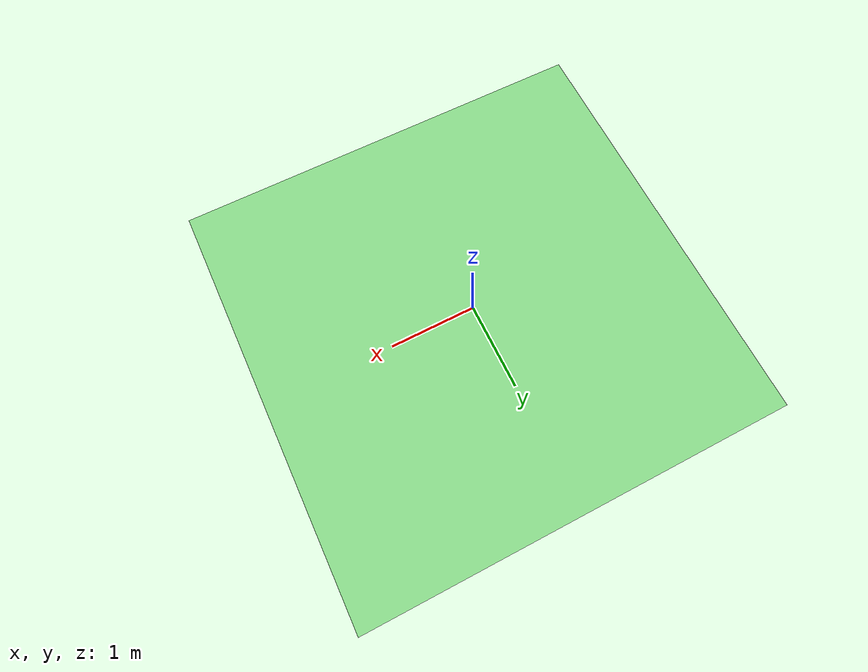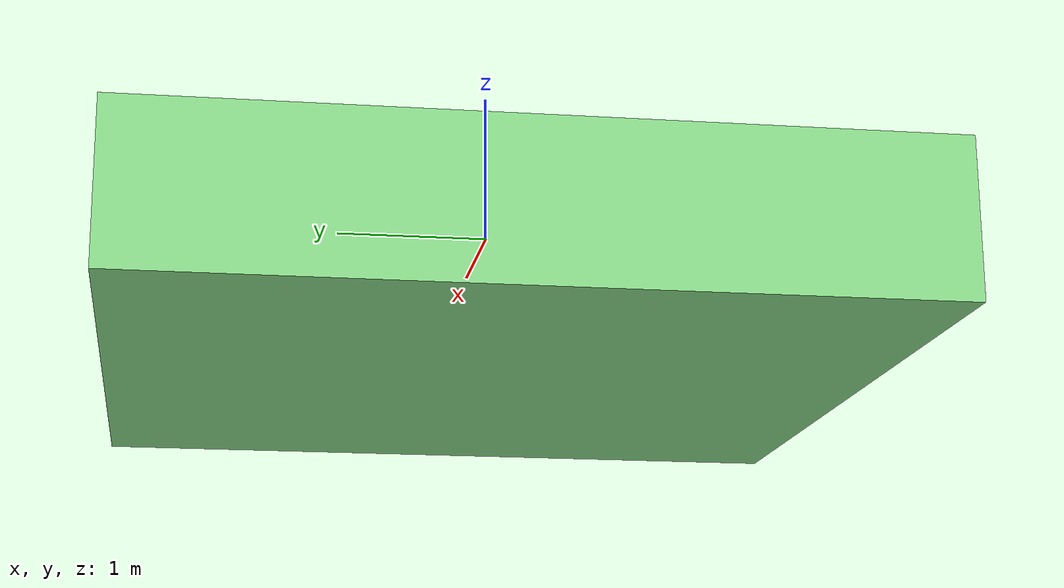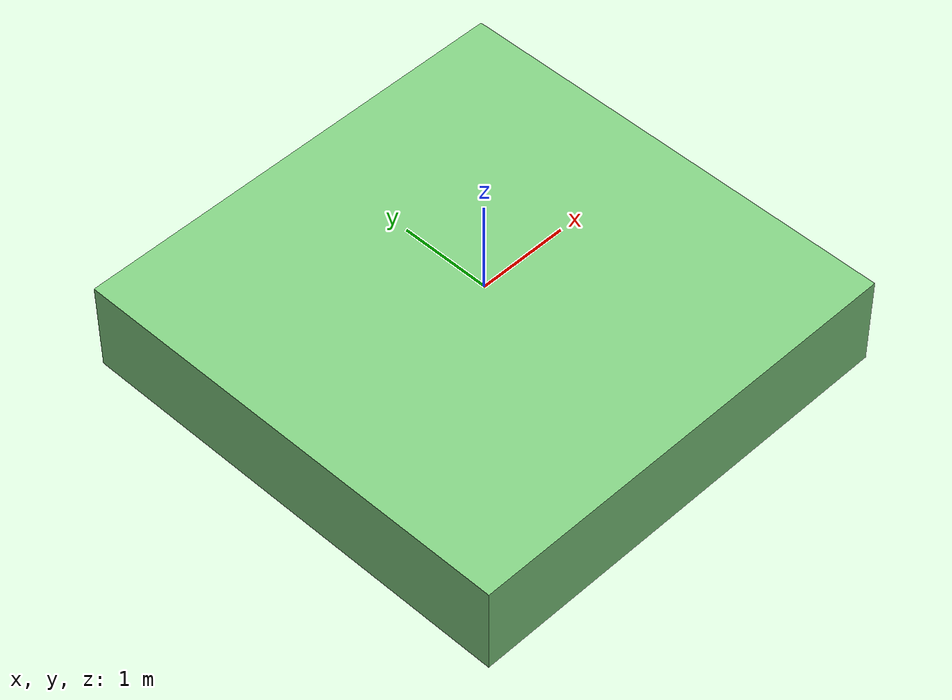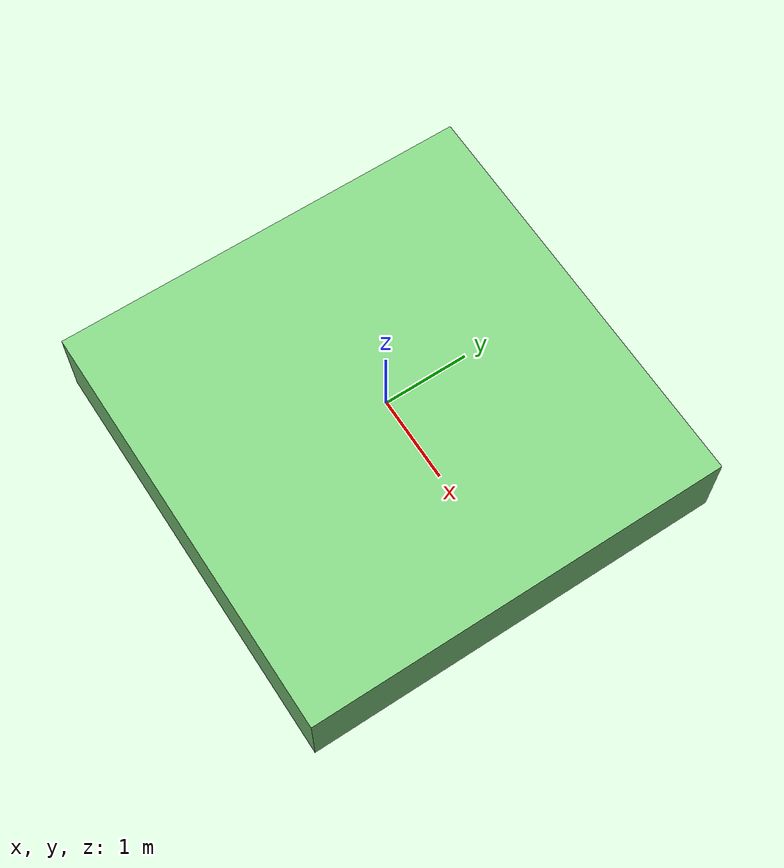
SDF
<sdf version="1.5">
  <model name="Robot">
    <link name="Robot">
      <visual name="visual_Floor">
        <pose>0.0 0.0 -0.5 0.0 0.0 0.0</pose>
        <geometry>
          <box>
            <size>5.0 5.0 1.0</size>
          </box>
        </geometry>

        <material>
          <diffuse>0.5 0.8 0.5 1.0</diffuse>
        </material>

      </visual>
      <collision name="collision_Floor">
        <pose>0.0 0.0 -0.5 0.0 0.0 0.0</pose>
        <geometry>
          <box>
            <size>5.0 5.0 1.0</size>
          </box>
        </geometry>
      </collision>
    </link>
    <frame name="frame_InOutdoorRoom">
      <pose>0.0 0.0 1.5 0.0 0.0 0.0</pose>
    </frame>
  </model>
</sdf>
